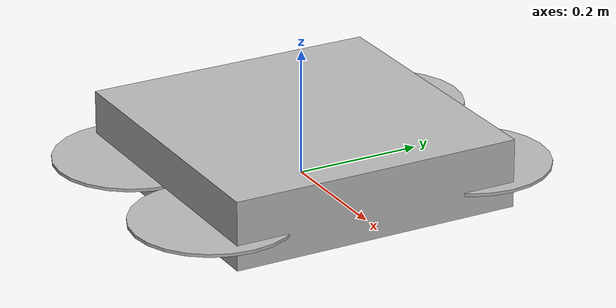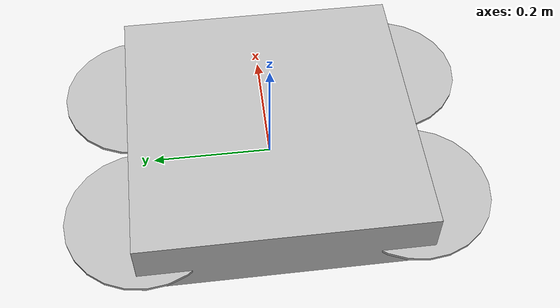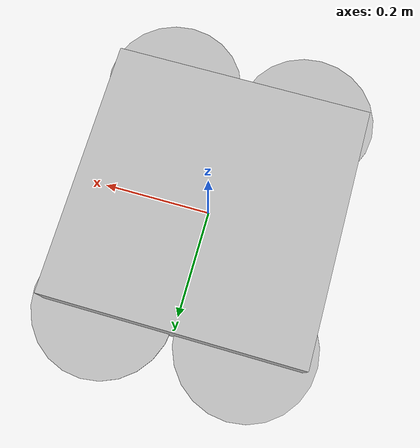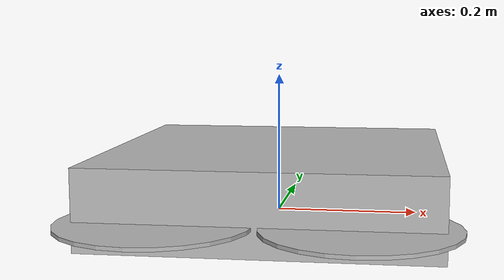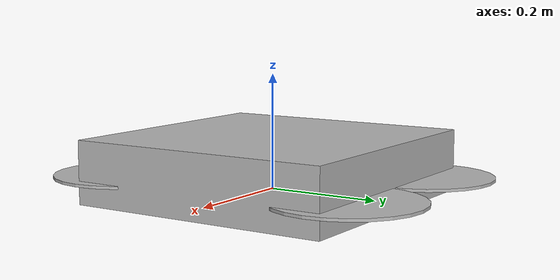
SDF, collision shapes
<?xml version='1.0'?>
<sdf version='1.6'>
  <model name='iris'>
    <link name='base_link'>
      <pose>0 0 0 0 0 0</pose>
      <inertial>
        <mass>1.5</mass>
        <inertia>
          <ixx>0.029125</ixx>
          <ixy>0</ixy>
          <ixz>0</ixz>
          <iyy>0.029125</iyy>
          <iyz>0</iyz>
          <izz>0.055225</izz>
        </inertia>
      </inertial>
      <collision name='base_link_collision'>
        <pose>0 0 0.04 0 0 0</pose>
        <geometry>
          <box>
            <size>0.47 0.47 0.11</size>
          </box>
        </geometry>
      </collision>
      <visual name='base_link_visual'>
        <geometry>
          <mesh>
            <uri>https://fuel.gazebosim.org/1.0/openrobotics/models/iris_drone/tip/files/meshes/iris.dae</uri>
          </mesh>
        </geometry>
      </visual>
      <sensor name='imu_sensor' type='imu'>
        <always_on>1</always_on>
        <update_rate>200</update_rate>
      </sensor>
    </link>

    <!-- Rotor definitions -->
    <link name='rotor_0'>
      <pose>0.13 -0.22 0.023 0 0 0</pose>
      <inertial><mass>0.005</mass><inertia><ixx>9.75e-07</ixx><iyy>0.000273104</iyy><izz>0.000274004</izz></inertia></inertial>
      <visual name='visual'><geometry><mesh><uri>https://fuel.gazebosim.org/1.0/openrobotics/models/iris_drone/tip/files/meshes/iris_prop_ccw.dae</uri><scale>1 1 1</scale></mesh></geometry></visual>
      <collision name='collision'><geometry><cylinder><radius>0.128</radius><length>0.005</length></cylinder></geometry></collision>
    </link>
    <link name='rotor_1'>
      <pose>-0.13 0.22 0.023 0 0 0</pose>
      <inertial><mass>0.005</mass><inertia><ixx>9.75e-07</ixx><iyy>0.000273104</iyy><izz>0.000274004</izz></inertia></inertial>
      <visual name='visual'><geometry><mesh><uri>https://fuel.gazebosim.org/1.0/openrobotics/models/iris_drone/tip/files/meshes/iris_prop_ccw.dae</uri><scale>1 1 1</scale></mesh></geometry></visual>
      <collision name='collision'><geometry><cylinder><radius>0.128</radius><length>0.005</length></cylinder></geometry></collision>
    </link>
    <link name='rotor_2'>
      <pose>0.13 0.22 0.023 0 0 0</pose>
      <inertial><mass>0.005</mass><inertia><ixx>9.75e-07</ixx><iyy>0.000273104</iyy><izz>0.000274004</izz></inertia></inertial>
      <visual name='visual'><geometry><mesh><uri>https://fuel.gazebosim.org/1.0/openrobotics/models/iris_drone/tip/files/meshes/iris_prop_cw.dae</uri><scale>1 1 1</scale></mesh></geometry></visual>
      <collision name='collision'><geometry><cylinder><radius>0.128</radius><length>0.005</length></cylinder></geometry></collision>
    </link>
    <link name='rotor_3'>
      <pose>-0.13 -0.22 0.023 0 0 0</pose>
      <inertial><mass>0.005</mass><inertia><ixx>9.75e-07</ixx><iyy>0.000273104</iyy><izz>0.000274004</izz></inertia></inertial>
      <visual name='visual'><geometry><mesh><uri>https://fuel.gazebosim.org/1.0/openrobotics/models/iris_drone/tip/files/meshes/iris_prop_cw.dae</uri><scale>1 1 1</scale></mesh></geometry></visual>
      <collision name='collision'><geometry><cylinder><radius>0.128</radius><length>0.005</length></cylinder></geometry></collision>
    </link>

    <!-- Joints -->
    <joint name='rotor_0_joint' type='revolute'><child>rotor_0</child><parent>base_link</parent><axis><xyz>0 0 1</xyz></axis></joint>
    <joint name='rotor_1_joint' type='revolute'><child>rotor_1</child><parent>base_link</parent><axis><xyz>0 0 1</xyz></axis></joint>
    <joint name='rotor_2_joint' type='revolute'><child>rotor_2</child><parent>base_link</parent><axis><xyz>0 0 1</xyz></axis></joint>
    <joint name='rotor_3_joint' type='revolute'><child>rotor_3</child><parent>base_link</parent><axis><xyz>0 0 1</xyz></axis></joint>

    <!-- ArduPilot Plugin -->
    <plugin name='ardupilot_plugin' filename='libArduPilotPlugin.so'>
      <modelName>iris</modelName>
      <imuName>imu_sensor</imuName>
      <control>
        <rotor>
          <jointName>rotor_0_joint</jointName>
          <direction>ccw</direction>
          <motorConstant>8.54858e-06</motorConstant>
          <momentConstant>1.6e-9</momentConstant>
        </rotor>
        <rotor>
          <jointName>rotor_1_joint</jointName>
          <direction>ccw</direction>
          <motorConstant>8.54858e-06</motorConstant>
          <momentConstant>1.6e-9</momentConstant>
        </rotor>
        <rotor>
          <jointName>rotor_2_joint</jointName>
          <direction>cw</direction>
          <motorConstant>8.54858e-06</motorConstant>
          <momentConstant>1.6e-9</momentConstant>
        </rotor>
        <rotor>
          <jointName>rotor_3_joint</jointName>
          <direction>cw</direction>
          <motorConstant>8.54858e-06</motorConstant>
          <momentConstant>1.6e-9</momentConstant>
        </rotor>
      </control>
    </plugin>
  </model>
</sdf>
